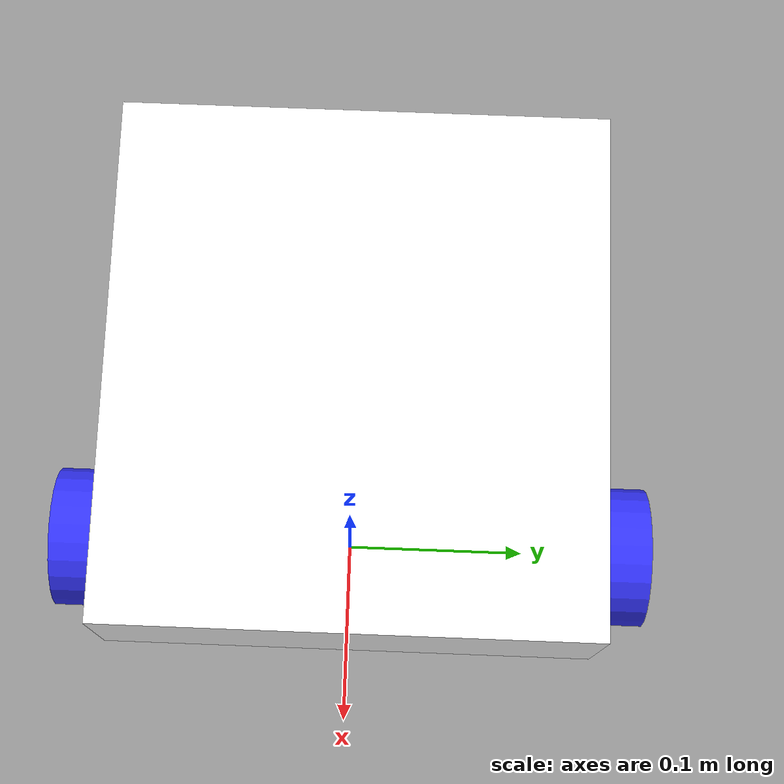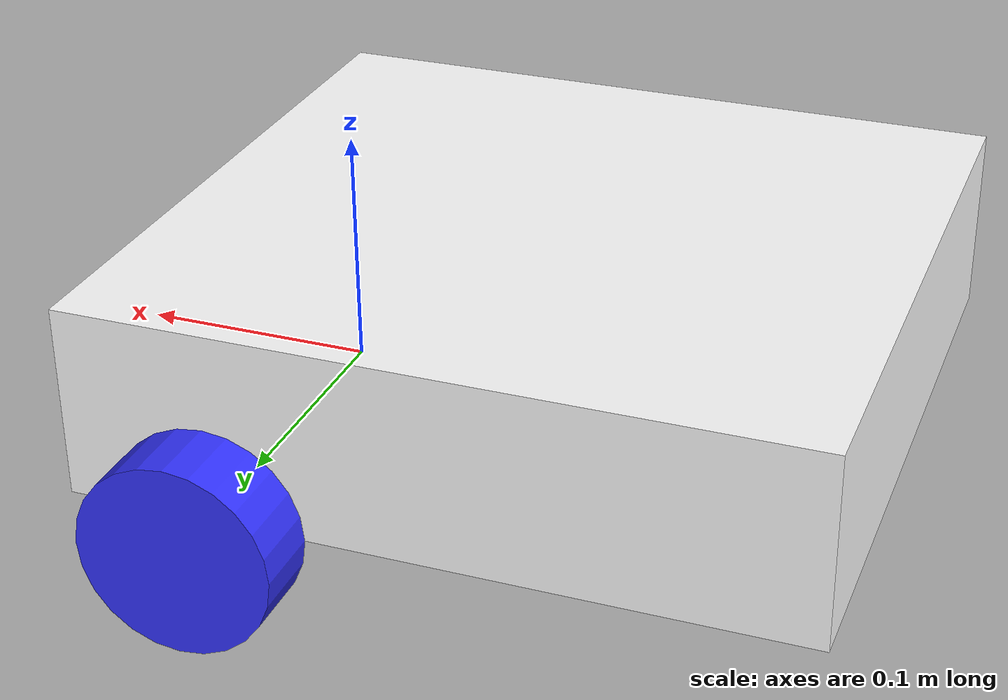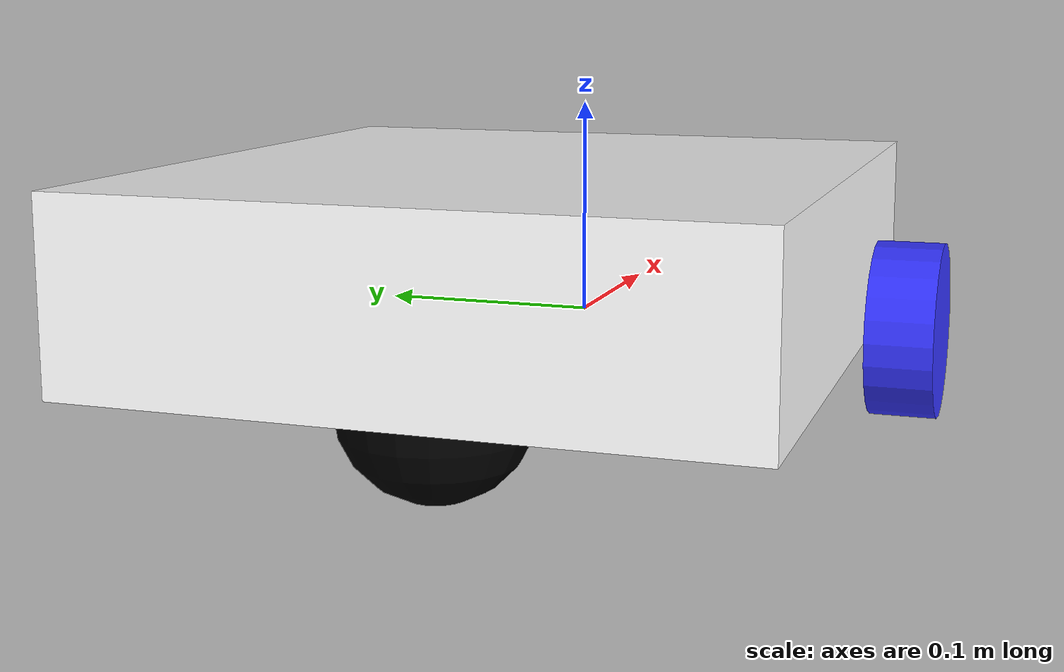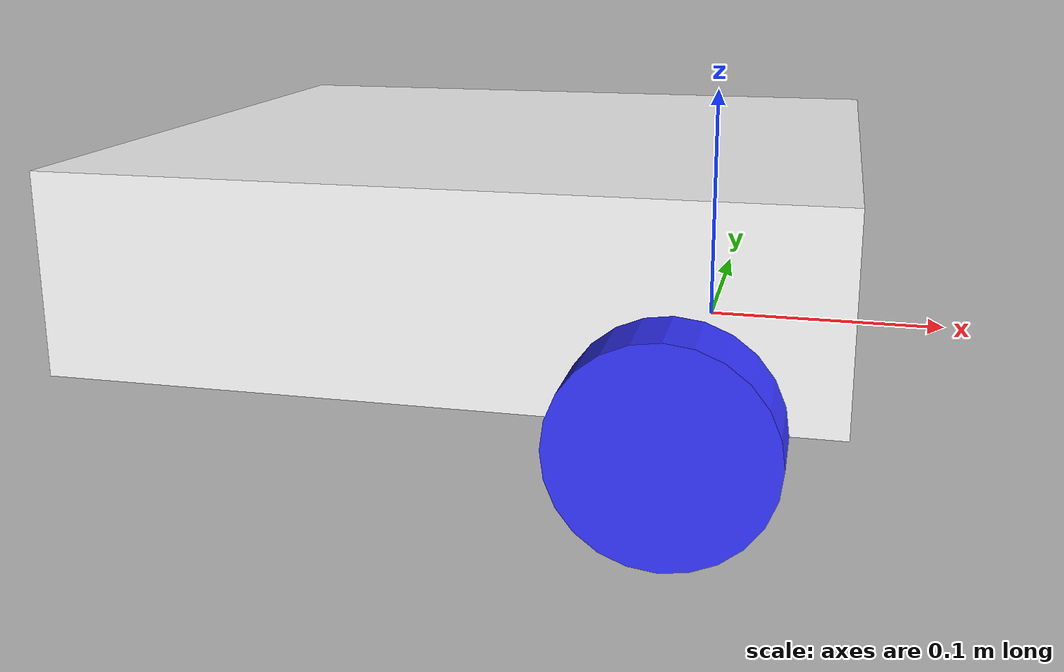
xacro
<?xml version="1.0"?>
<robot xmlns:xacro="http://www.ros.org/wiki/xacro">

	<xacro:include filename="inertial_macros.xacro"/>

	<material name="white">
   		<color rgba="1 1 1 1"/>
  	</material>

  	<material name="orange">
   		<color rgba="1 0.3 0.1 1"/>
  	</material>

	<material name="red">
   		<color rgba="1 0 0 1"/>
  	</material>

	<material name="blue">
   		<color rgba="0.2 0.2 1 1"/>
  	</material>

	<material name="green">
   		<color rgba="0 0.84 0 1"/>
  	</material>

	<material name="black">
   		<color rgba="0 0 0 1"/>
  	</material>

  	<material name="grey">
   		<color rgba="0.5 0.5 0.5 1"/>
  	</material>

	<!-- BASE LINK -->

	<link name="base_link">

	</link>

	<!-- BASE_FOOTPRINT LINK -->

	<joint name="base_footprint_joint" type="fixed">
		<parent link="base_link"/>
		<child link="base_footprint"/>
		<origin xyz="0 0 0" rpy="0 0 0"/>
	</joint>

	<link name="base_footprint">

	</link>

	<!-- CHASSIS LINK -->

	<joint name="chassis_joint" type="fixed">
		<parent link="base_link"/>
		<child link="chassis"/>
		<origin xyz="-0.09 0 0"/>
	</joint>

	<link name="chassis">
		<visual>
			<origin xyz="0 0 0.04"/>
			<geometry>
				<box size="0.3 0.28 0.08"/>
			</geometry>
			<material name="white"/>
		</visual>
		<collision>
			<origin xyz="0 0 0.04"/>
			<geometry>
				<box size="0.3 0.28 0.08"/>
			</geometry>
			<material name="white"/>
		</collision>
		<xacro:inertial_box mass="1.5" x="0.3" y="0.28" z="0.08">
			<origin xyz="0 0 0.04" rpy="0 0 0"/>
		</xacro:inertial_box>
	</link>

	<gazebo reference="chassis">
		<material>Gazebo/White</material>
	</gazebo>

	<!-- LEFT WHEEL LINK -->

	<joint name="left_wheel_joint" type="continuous">
		<parent link="chassis"/>
		<child link="left_wheel"/>
		<origin xyz="0.09 0.155 0" rpy="-${pi/2} 0 0"/>
		<axis xyz="0 0 1"/>
	</joint>

	<link name="left_wheel">
		<visual>
			<geometry>
				<cylinder radius="0.04" length="0.03"/>
			</geometry>
			<material name="blue"/>
		</visual>
		<collision>
			<geometry>
				<cylinder radius="0.04" length="0.03"/>
			</geometry>
			<material name="blue"/>
		</collision>
		<xacro:inertial_cylinder mass="0.1" radius="0.04" length="0.03">
			<origin xyz="0 0 0" rpy="0 0 0"/>
		</xacro:inertial_cylinder>
	</link>

	<gazebo reference="left_wheel">
		<material>Gazebo/Blue</material>
	</gazebo>

	<!-- RIGHT WHEEL LINK -->

	<joint name="right_wheel_joint" type="continuous">
		<parent link="chassis"/>
		<child link="right_wheel"/>
		<origin xyz="0.09 -0.155 0" rpy="${pi/2} 0 0"/>
		<axis xyz="0 0 -1"/>
	</joint>

	<link name="right_wheel">
		<visual>
			<geometry>
				<cylinder radius="0.04" length="0.03"/>
			</geometry>
			<material name="blue"/>
		</visual>
		<collision>
			<geometry>
				<cylinder radius="0.04" length="0.03"/>
			</geometry>
			<material name="blue"/>
		</collision>
		<xacro:inertial_cylinder mass="0.1" radius="0.04" length="0.03">
			<origin xyz="0 0 0" rpy="0 0 0"/>
		</xacro:inertial_cylinder>
	</link>

	<gazebo reference="right_wheel">
		<material>Gazebo/Blue</material>
	</gazebo>

	<!-- CASTER WHEEL LINK -->

	<joint name="caster_wheel_joint" type="fixed">
		<parent link="chassis"/>
		<child link="caster_wheel"/>
		<origin xyz="-0.1 0 0"/>
	</joint>

	<link name="caster_wheel">
		<visual>
			<geometry>
				<sphere radius="0.04"/>
			</geometry>
			<material name="black"/>
		</visual>
		<collision>
			<geometry>
				<sphere radius="0.04"/>
			</geometry>
			<material name="black"/>
		</collision>
		<xacro:inertial_sphere mass="0.1" radius="0.04">
			<origin xyz="0 0 0" rpy="0 0 0"/>
		</xacro:inertial_sphere>
	</link>

	<gazebo reference="caster_wheel">
		<material>Gazebo/Black</material>
		<mu1 value="0.001"/>
		<mu2 value="0.001"/>
	</gazebo>

</robot>
